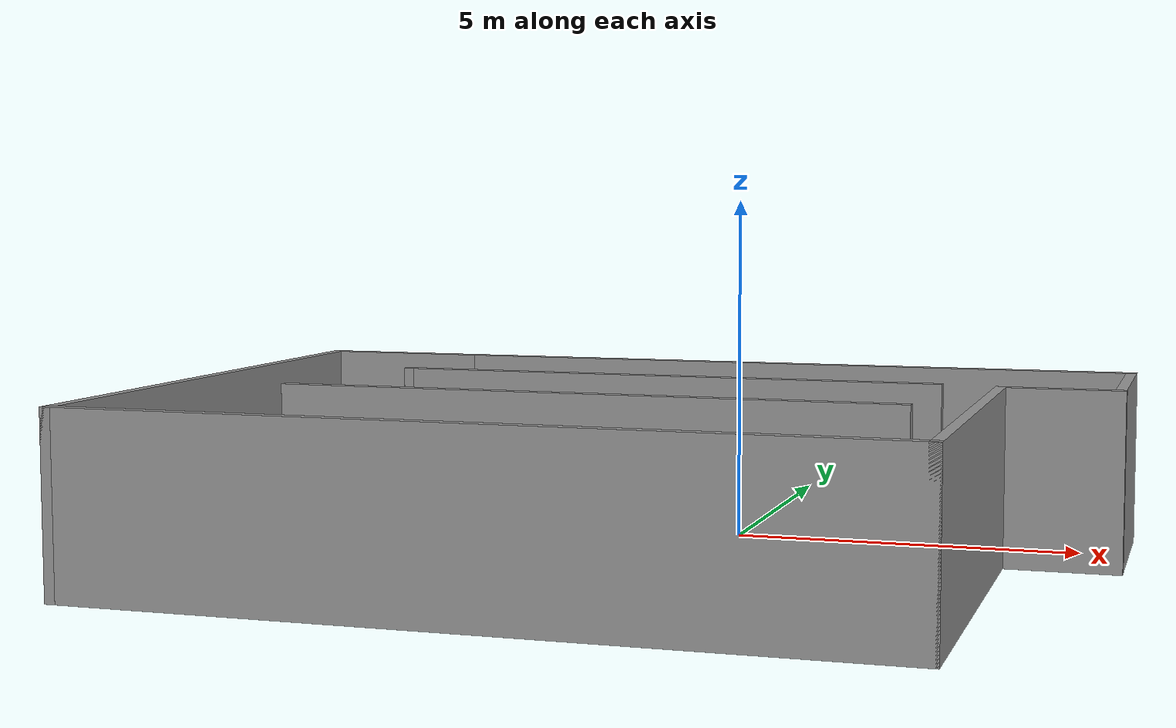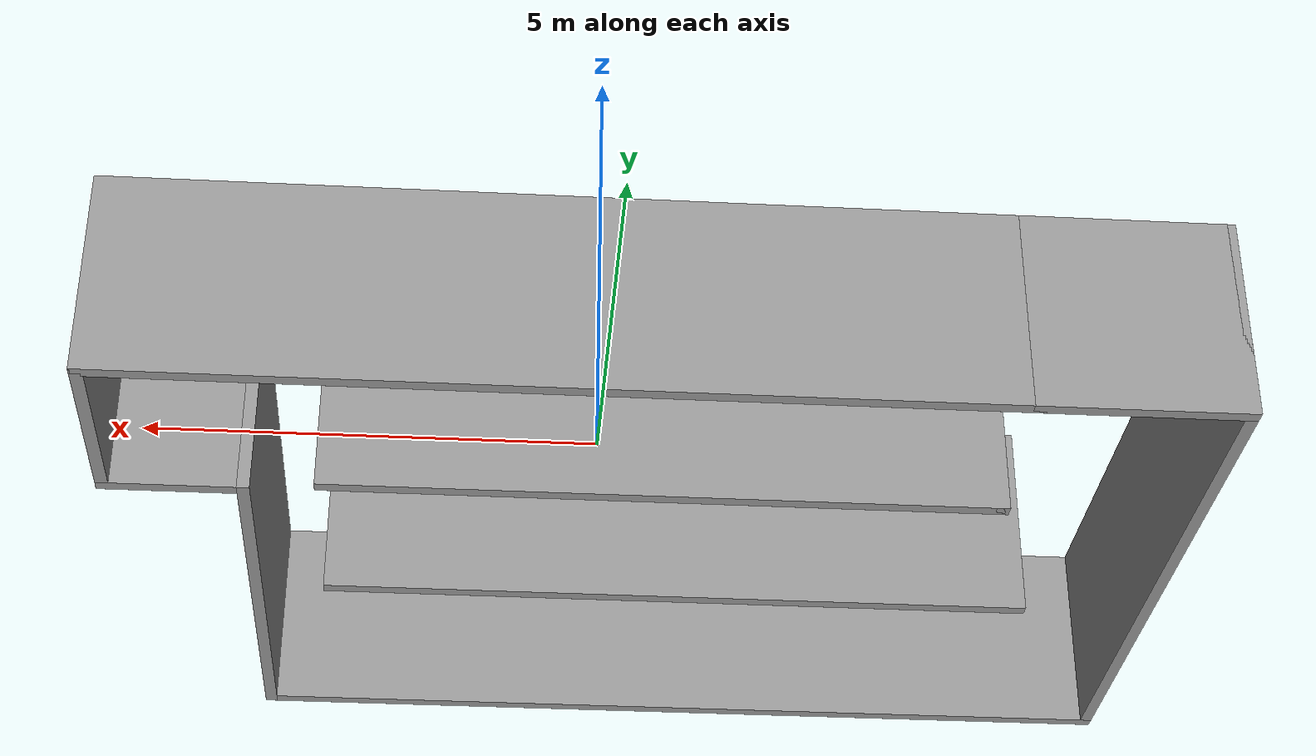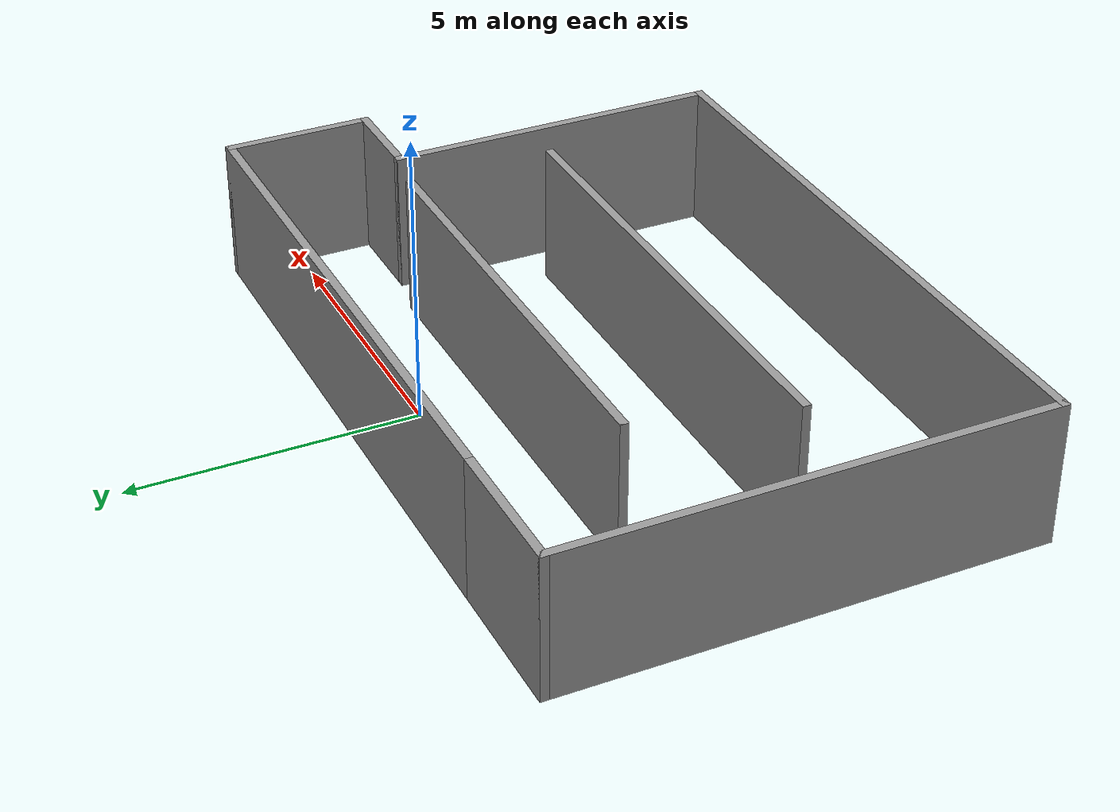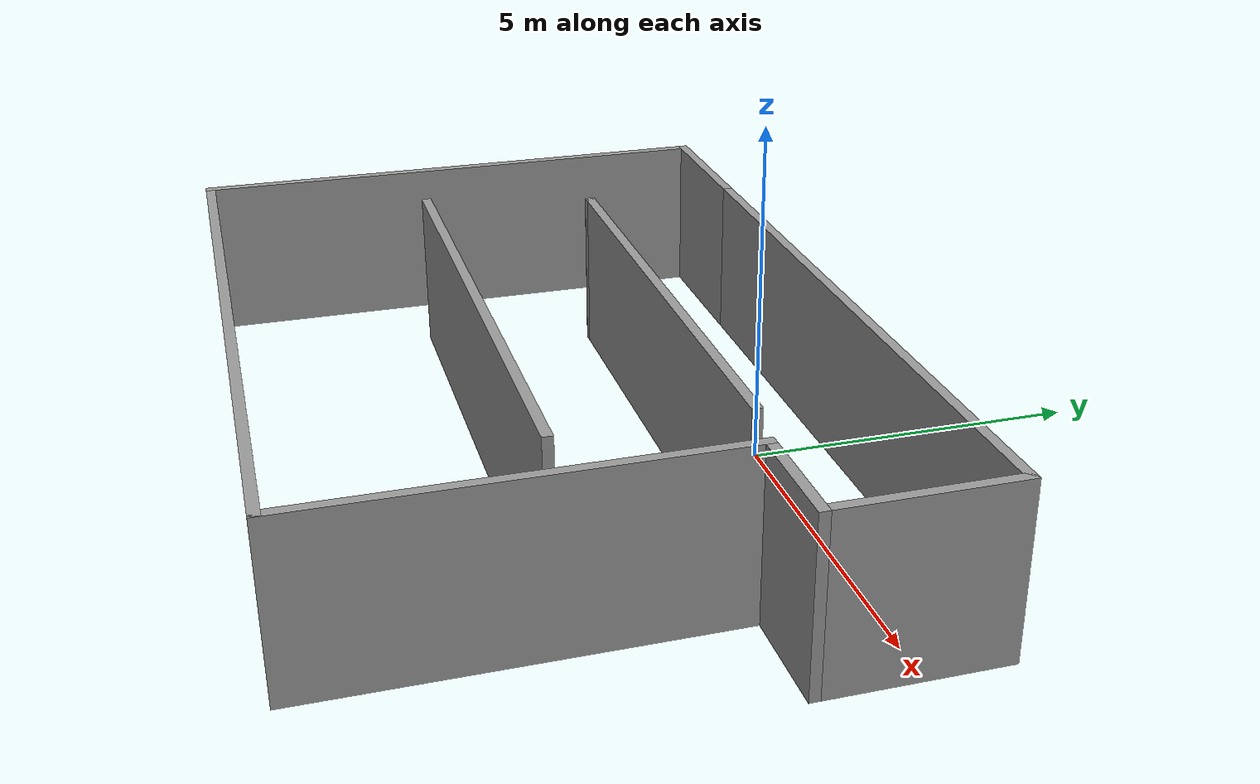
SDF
<?xml version='1.0'?>
<sdf version='1.6'>
  <model name='multiplePaths'>
    <pose frame=''>-0.75 -3.035 0 0 -0 0</pose>
    <link name='Wall_0'>
      <collision name='Wall_0_Collision'>
        <geometry>
          <box>
            <size>8.75 0.15 2.5</size>
          </box>
        </geometry>
        <pose frame=''>0 0 1.25 0 -0 0</pose>
      </collision>
      <visual name='Wall_0_Visual'>
        <pose frame=''>0 0 1.25 0 -0 0</pose>
        <geometry>
          <box>
            <size>8.75 0.15 2.5</size>
          </box>
        </geometry>
        <material>
          <script>
            <uri>file://media/materials/scripts/gazebo.material</uri>
            <name>Gazebo/Grey</name>
          </script>
          <ambient>1 1 1 1</ambient>
        </material>
        <meta>
          <layer>0</layer>
        </meta>
      </visual>
      <pose frame=''>-0.45 -0.775 0 0 -0 0</pose>
    </link>
    <link name='Wall_2'>
      <collision name='Wall_2_Collision'>
        <geometry>
          <box>
            <size>8.05247 0.15 2.5</size>
          </box>
        </geometry>
        <pose frame=''>0 0 1.25 0 -0 0</pose>
      </collision>
      <visual name='Wall_2_Visual'>
        <pose frame=''>0 0 1.25 0 -0 0</pose>
        <geometry>
          <box>
            <size>8.05247 0.15 2.5</size>
          </box>
        </geometry>
        <material>
          <script>
            <uri>file://media/materials/scripts/gazebo.material</uri>
            <name>Gazebo/Grey</name>
          </script>
          <ambient>1 1 1 1</ambient>
        </material>
        <meta>
          <layer>0</layer>
        </meta>
      </visual>
      <pose frame=''>-0.092561 1.825 0 0 -0 3.14159</pose>
    </link>
    <link name='Wall_21'>
      <collision name='Wall_21_Collision'>
        <geometry>
          <box>
            <size>8.5 0.15 2.5</size>
          </box>
        </geometry>
        <pose frame=''>0 0 1.25 0 -0 0</pose>
      </collision>
      <visual name='Wall_21_Visual'>
        <pose frame=''>0 0 1.25 0 -0 0</pose>
        <geometry>
          <box>
            <size>8.5 0.15 2.5</size>
          </box>
        </geometry>
        <material>
          <script>
            <uri>file://media/materials/scripts/gazebo.material</uri>
            <name>Gazebo/Grey</name>
          </script>
          <ambient>1 1 1 1</ambient>
        </material>
        <meta>
          <layer>0</layer>
        </meta>
      </visual>
      <pose frame=''>-6.35 0 0 0 0 -1.5708</pose>
    </link>
    <link name='Wall_22'>
      <collision name='Wall_22_Collision'>
        <geometry>
          <box>
            <size>11.25 0.15 2.5</size>
          </box>
        </geometry>
        <pose frame=''>0 0 1.25 0 -0 0</pose>
      </collision>
      <visual name='Wall_22_Visual'>
        <pose frame=''>0 0 1.25 0 -0 0</pose>
        <geometry>
          <box>
            <size>11.25 0.15 2.5</size>
          </box>
        </geometry>
        <material>
          <script>
            <uri>file://media/materials/scripts/gazebo.material</uri>
            <name>Gazebo/Grey</name>
          </script>
          <ambient>1 1 1 1</ambient>
        </material>
        <meta>
          <layer>0</layer>
        </meta>
      </visual>
      <pose frame=''>-0.8 -4.175 0 0 -0 0</pose>
    </link>
    <link name='Wall_24'>
      <collision name='Wall_24_Collision'>
        <geometry>
          <box>
            <size>6 0.15 2.5</size>
          </box>
        </geometry>
        <pose frame=''>0 0 1.25 0 -0 0</pose>
      </collision>
      <visual name='Wall_24_Visual'>
        <pose frame=''>0 0 1.25 0 -0 0</pose>
        <geometry>
          <box>
            <size>6 0.15 2.5</size>
          </box>
        </geometry>
        <material>
          <script>
            <uri>file://media/materials/scripts/gazebo.material</uri>
            <name>Gazebo/Grey</name>
          </script>
          <ambient>1 1 1 1</ambient>
        </material>
        <meta>
          <layer>0</layer>
        </meta>
      </visual>
      <pose frame=''>4.75 -1.25 0 0 -0 1.5708</pose>
    </link>
    <link name='Wall_29'>
      <collision name='Wall_29_Collision'>
        <geometry>
          <box>
            <size>2.5 0.15 2.5</size>
          </box>
        </geometry>
        <pose frame=''>0 0 1.25 0 -0 0</pose>
      </collision>
      <visual name='Wall_29_Visual'>
        <pose frame=''>0 0 1.25 0 -0 0</pose>
        <geometry>
          <box>
            <size>2.5 0.15 2.5</size>
          </box>
        </geometry>
        <material>
          <script>
            <uri>file://media/materials/scripts/gazebo.material</uri>
            <name>Gazebo/Grey</name>
          </script>
          <ambient>1 1 1 1</ambient>
        </material>
        <meta>
          <layer>0</layer>
        </meta>
      </visual>
      <pose frame=''>-5.175 4.175 0 0 -0 0</pose>
    </link>
    <link name='Wall_3'>
      <collision name='Wall_3_Collision'>
        <geometry>
          <box>
            <size>0.15 0.15 2.5</size>
          </box>
        </geometry>
        <pose frame=''>0 0 1.25 0 -0 0</pose>
      </collision>
      <visual name='Wall_3_Visual'>
        <pose frame=''>0 0 1.25 0 -0 0</pose>
        <geometry>
          <box>
            <size>0.15 0.15 2.5</size>
          </box>
        </geometry>
        <material>
          <script>
            <uri>file://media/materials/scripts/gazebo.material</uri>
            <name>Gazebo/Grey</name>
          </script>
          <ambient>1 1 1 1</ambient>
        </material>
        <meta>
          <layer>0</layer>
        </meta>
      </visual>
      <pose frame=''>-4.03512 1.825 0 0 -0 0</pose>
    </link>
    <link name='Wall_32'>
      <collision name='Wall_32_Collision'>
        <geometry>
          <box>
            <size>10.5 0.15 2.5</size>
          </box>
        </geometry>
        <pose frame=''>0 0 1.25 0 -0 0</pose>
      </collision>
      <visual name='Wall_32_Visual'>
        <pose frame=''>0 0 1.25 0 -0 0</pose>
        <geometry>
          <box>
            <size>10.5 0.15 2.5</size>
          </box>
        </geometry>
        <material>
          <script>
            <uri>file://media/materials/scripts/gazebo.material</uri>
            <name>Gazebo/Grey</name>
          </script>
          <ambient>1 1 1 1</ambient>
        </material>
        <meta>
          <layer>0</layer>
        </meta>
      </visual>
      <pose frame=''>1.175 4.175 0 0 -0 0</pose>
    </link>
    <link name='Wall_34'>
      <collision name='Wall_34_Collision'>
        <geometry>
          <box>
            <size>2.5 0.15 2.5</size>
          </box>
        </geometry>
        <pose frame=''>0 0 1.25 0 -0 0</pose>
      </collision>
      <visual name='Wall_34_Visual'>
        <pose frame=''>0 0 1.25 0 -0 0</pose>
        <geometry>
          <box>
            <size>2.5 0.15 2.5</size>
          </box>
        </geometry>
        <material>
          <script>
            <uri>file://media/materials/scripts/gazebo.material</uri>
            <name>Gazebo/Grey</name>
          </script>
          <ambient>1 1 1 1</ambient>
        </material>
        <meta>
          <layer>0</layer>
        </meta>
      </visual>
      <pose frame=''>6.35 3 0 0 0 -1.5708</pose>
    </link>
    <link name='Wall_36'>
      <collision name='Wall_36_Collision'>
        <geometry>
          <box>
            <size>1.75 0.15 2.5</size>
          </box>
        </geometry>
        <pose frame=''>0 0 1.25 0 -0 0</pose>
      </collision>
      <visual name='Wall_36_Visual'>
        <pose frame=''>0 0 1.25 0 -0 0</pose>
        <geometry>
          <box>
            <size>1.75 0.15 2.5</size>
          </box>
        </geometry>
        <material>
          <script>
            <uri>file://media/materials/scripts/gazebo.material</uri>
            <name>Gazebo/Grey</name>
          </script>
          <ambient>1 1 1 1</ambient>
        </material>
        <meta>
          <layer>0</layer>
        </meta>
      </visual>
      <pose frame=''>5.55 1.675 0 0 -0 0</pose>
    </link>
    <static>1</static>
  </model>
</sdf>
